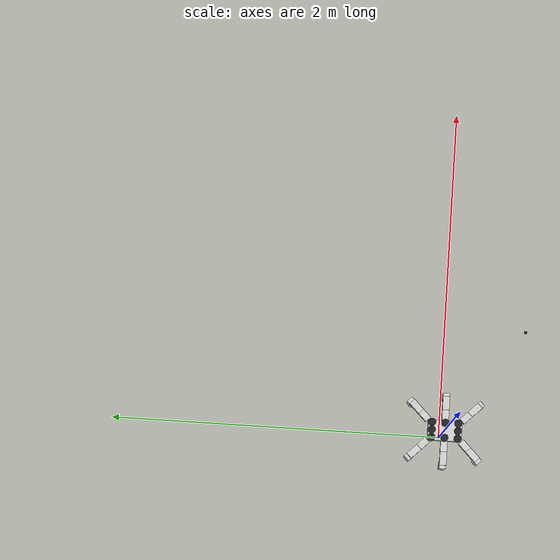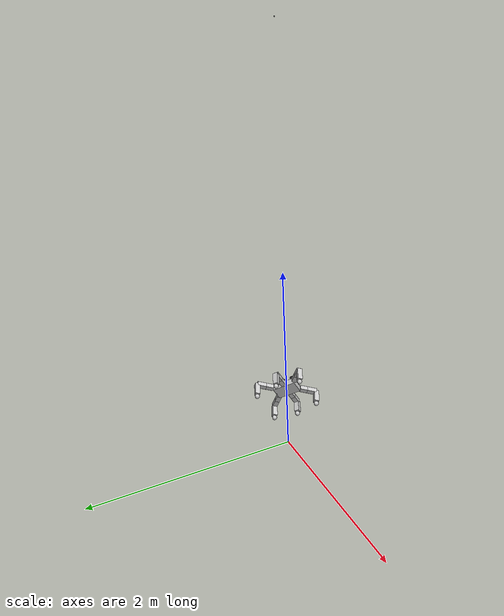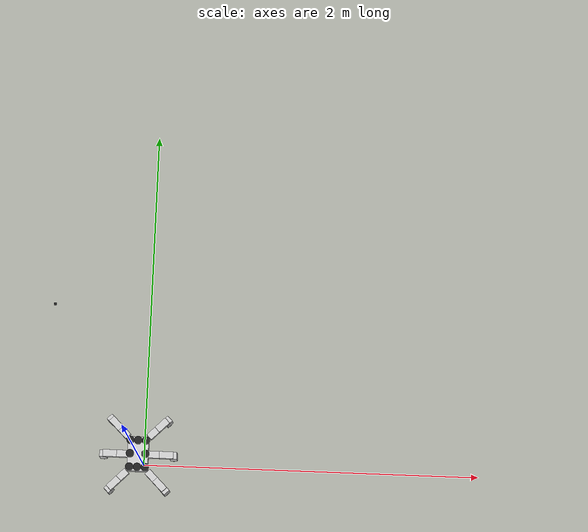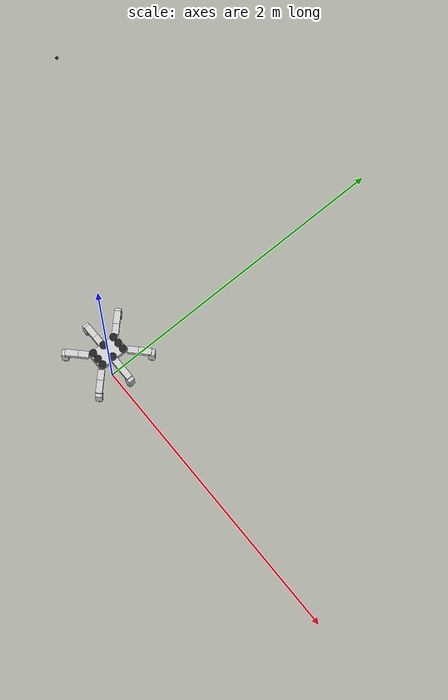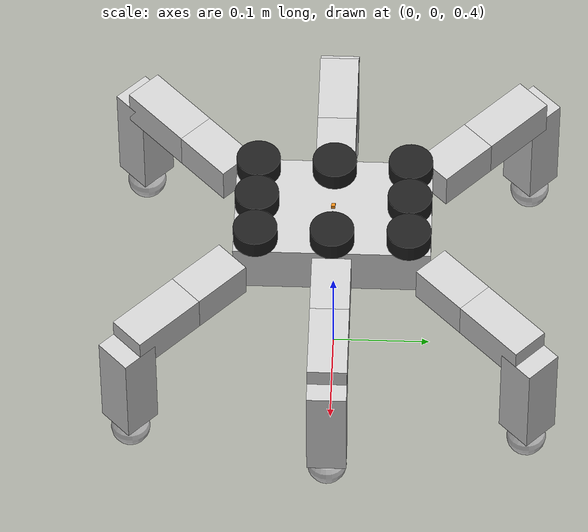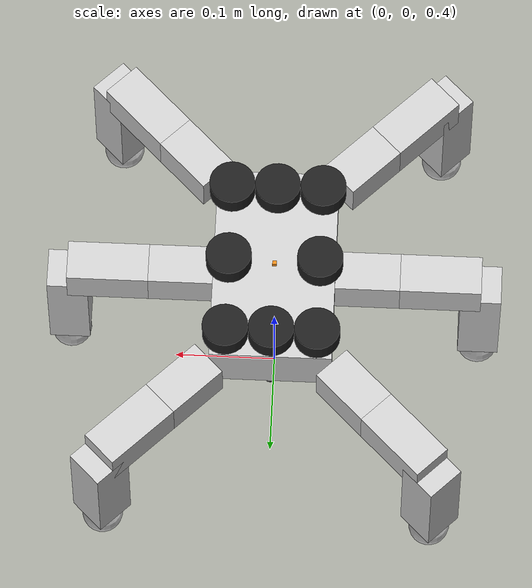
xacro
<?xml version="1.0"?>
<robot name="hexapod" xmlns:xacro="http://ros.org/wiki/xacro">
  <gazebo>
    <plugin name="gazebo_ros_control" filename="libgazebo_ros_control.so">
      <robotNamespace>/hexapod</robotNamespace>
    </plugin>
  </gazebo>

  <xacro:property name="body_y_length" value="0.200" />
  <xacro:property name="body_z_length" value="0.056" />
  <xacro:property name="body_x_length" value="0.120" />
  <xacro:property name="body_mass" value="0.700" />

  <xacro:property name="hip_z_length" value="0.04" />
  <xacro:property name="hip_y_length" value="0.04" />
  <xacro:property name="hip_x_length" value="0.063875" />
  <xacro:property name="hip_mass" value="0.081" />
  <xacro:property name="tc_joint_low" value="${-(35.0*pi)/180}" />
  <xacro:property name="tc_joint_high" value="${(35.0*pi)/180}" />

  <xacro:property name="femur_z_length" value="0.04" />
  <xacro:property name="femur_y_length" value="0.04" />
  <xacro:property name="femur_x_length" value="0.080" />
  <xacro:property name="femur_mass" value="0.136" />
  <xacro:property name="ctr_joint_low" value="${-(85.0*pi)/180}" />
  <xacro:property name="ctr_joint_high" value="${(85.0*pi)/180}" />
  <xacro:property name="ctr_init_pitch" value="0.0" />

  <xacro:property name="tibia_z_length" value="${0.114308}" />
  <xacro:property name="tibia_y_length" value="0.04" />
  <xacro:property name="tibia_x_length" value="0.04" />
  <xacro:property name="tibia_mass" value="${0.01338}" />
  <xacro:property name="fti_joint_low" value="${-(85.0*pi)/180}" />
  <xacro:property name="fti_joint_high" value="${(85.0*pi)/180}" />

  <xacro:property name="foot_mass" value="${0.00892}" />

  <!-- CHECK VALUES PLACED HERE!! -->
  <xacro:property name="imu_size" value="0.004" />
  <xacro:property name="imu_mass" value="0.024" />
  <xacro:property name="infrared_size" value="0.0225" />
  <xacro:property name="infrared_mass" value="0.09" />

  <xacro:property name="servo_vel" value="${(375*pi)/180}" />
  <xacro:property name="servo_effort_limit" value="1.89" />

  <!-- Inertia -->
  <xacro:macro name="cylinder_inertial" params="mass r l">
    <inertial>
      <mass value="${mass}" />
      <inertia ixx="${mass*(3*r*r+l*l)/12}" ixy="0.0" ixz="0.0"
        iyy="${mass*(3*r*r+l*l)/12}" iyz="0.0"
        izz="${mass*r*r/2.0}" />
    </inertial>
  </xacro:macro>

  <!-- Sonar sensors for obstacle detection -->
  <xacro:macro name="sonar" params="suffix xyz rpy">
    <link name="sonar_${suffix}_link">
      <visual>
        <geometry>
          <cylinder radius="${infrared_size}" length="${infrared_size-0.0025}"/>
        </geometry>
      </visual>
      <xacro:cylinder_inertial mass="${infrared_mass}" r="${infrared_size}" l="${infrared_size-0.0025}"/>
    </link>
    <joint name="torso_sonar_${suffix}_joint" type="fixed">
      <parent link="torso"/>
      <child link="sonar_${suffix}_link"/>
      <origin xyz="${xyz}" rpy="${rpy}"/>
    </joint>

    <gazebo reference="sonar_${suffix}_link">
      <material>Gazebo/Black</material>
      <sensor type="ray" name="sonar_${suffix}">
        <pose>0 0 0 0 0 0</pose>
        <visualize>true</visualize>
        <update_rate>50</update_rate>
        <ray>
          <scan>
            <horizontal>
              <samples>10</samples>
              <resolution>1</resolution>
              <min_angle>-0.1309</min_angle>
              <max_angle>0.1309</max_angle>
            </horizontal>
            <vertical>
              <samples>10</samples>
              <resolution>1</resolution>
              <min_angle>-0.1309</min_angle>
              <max_angle>0.1309</max_angle>
            </vertical>
          </scan>
          <range>
            <min>0.02</min>
            <max>1.0</max>
            <resolution>0.003</resolution>
          </range>
        </ray>
        <plugin filename="libgazebo_ros_range.so" name="gazebo_ros_range">
          <gaussianNoise>0.005</gaussianNoise>
          <alwaysOn>true</alwaysOn>
          <updateRate>50</updateRate>
          <topicName>sensor/sonar_${suffix}</topicName>
          <frameName>sonar_${suffix}_link</frameName>
          <visualize>true</visualize>
          <radiation>infrared</radiation>
          <fov>0.02</fov>
        </plugin>
      </sensor>
    </gazebo>

    <gazebo reference="torso_sonar_${suffix}_joint">
      <disableFixedJointLumping>true</disableFixedJointLumping>
    </gazebo>
  </xacro:macro>

  <!-- Hexapod -->
  <link name="dummy_link">
    <visual>
      <origin xyz="0 0 6.0" rpy="0 0 0" />
      <geometry>
        <box size="0.01 0.01 0.01"/>
      </geometry>
      <material name="black"/>
    </visual>
    <gazebo reference="dummy_link">
      <material>Gazebo/Black</material>
    </gazebo>
  </link>

  <link name="torso">
    <visual>
      <geometry>
        <box size="${body_x_length} ${body_y_length} ${body_z_length}"/>
      </geometry>
    </visual>
    <collision>
      <geometry>
        <box size="${body_x_length} ${body_y_length} ${body_z_length}"/>
      </geometry>
    </collision>
    <inertial>
        <mass value="${body_mass}" />
        <inertia ixx="0.002516" ixy="0.0" ixz="0.0"
                 iyy="0.001023" iyz="0.0"
                 izz="0.003173" />
    </inertial>
  </link>
  <joint name="dummy_base_joint" type="fixed">
    <parent link="dummy_link"/>
    <child link="torso"/>
    <origin xyz="0 0 ${tibia_z_length + tibia_x_length*2.0 + 0.4}" rpy="0 0 0"/>
  </joint>
  <gazebo reference="torso">
    <material>Gazebo/LightGrey</material>
  </gazebo>

  <!-- IMU sensor -->
  <link name="imu_link">
    <visual>
      <geometry>
        <box size="${imu_size} ${imu_size} ${imu_size}"/>
      </geometry>
    </visual>
    <collision>
      <geometry>
        <box size="${imu_size} ${imu_size} ${imu_size}"/>
      </geometry>
    </collision>
    <inertial>
        <mass value="${imu_mass}" />
        <inertia ixx="${(1/12) * imu_mass * (imu_size * imu_size + imu_size * imu_size)}" ixy="0.0" ixz="0.0"
                 iyy="${(1/12) * imu_mass * (imu_size * imu_size + imu_size * imu_size)}" iyz="0.0"
                 izz="${(1/12) * imu_mass * (imu_size * imu_size + imu_size * imu_size)}" />
    </inertial>
  </link>
  <joint name="torso_imu_joint" type="fixed">
    <parent link="torso"/>
    <child link="imu_link"/>
    <origin xyz="0 0 ${(body_z_length/2.0)+(imu_size/2.0)}" rpy="0 0 0"/>
  </joint>
  <gazebo reference="imu_link">
    <material>Gazebo/Orange</material>
    <gravity>true</gravity>
    <sensor name="imu_sensor" type="imu">
      <always_on>true</always_on>
      <update_rate>100</update_rate>
      <visualize>true</visualize>
      <topic>__default_topic__</topic>
      <plugin filename="libgazebo_ros_imu_sensor.so" name="imu_plugin">
        <robotNamespace>/hexapod</robotNamespace>
        <topicName>imu</topicName>
        <bodyName>imu_link</bodyName>
        <updateRateHZ>100.0</updateRateHZ>
        <gaussianNoise>0.0</gaussianNoise>
        <xyzOffset>0 0 0</xyzOffset>
        <rpyOffset>0 0 0</rpyOffset>
        <frameName>imu_link</frameName>
      </plugin>
      <pose>0 0 0 0 0 0</pose>
    </sensor>
  </gazebo>

  <gazebo reference="torso_imu_joint">
    <disableFixedJointLumping>true</disableFixedJointLumping>
  </gazebo>

  <!-- Sonar/IR sensor for height estimation -->
  <link name="infrared_link">
    <visual>
      <geometry>
        <cylinder radius="${infrared_size-0.0185}" length="${infrared_size-0.0185}"/>
      </geometry>
    </visual>
    <xacro:cylinder_inertial mass="${infrared_mass}" r="${infrared_size-0.0185}" l="${infrared_size-0.0185}"/>
  </link>
  <joint name="torso_infrared_joint" type="fixed">
    <parent link="torso"/>
    <child link="infrared_link"/>
    <origin xyz="0 ${(body_y_length/2.0)-(infrared_size-0.0185)} ${-(body_z_length/2.0)-(infrared_size-0.0185)}" rpy="${pi/2.0} ${pi/2.0} 0"/>
  </joint>
  <gazebo reference="infrared_link">
    <material>Gazebo/Black</material>
    <sensor type="ray" name="infrared_sensor">
      <pose>0 0 0 0 0 0</pose>
      <visualize>true</visualize>
      <update_rate>50</update_rate>
      <ray>
        <scan>
          <horizontal>
            <samples>10</samples>
            <resolution>1</resolution>
            <min_angle>-0.14835</min_angle>
            <max_angle>0.14835</max_angle>
          </horizontal>
          <vertical>
            <samples>10</samples>
            <resolution>1</resolution>
            <min_angle>-0.14835</min_angle>
            <max_angle>0.14835</max_angle>
          </vertical>
        </scan>
        <range>
          <min>0.001</min>
          <max>2</max>
          <resolution>0.002</resolution>
        </range>
      </ray>
      <plugin filename="libgazebo_ros_range.so" name="gazebo_ros_range">
        <gaussianNoise>0.005</gaussianNoise>
        <alwaysOn>true</alwaysOn>
        <updateRate>50</updateRate>
        <topicName>sensor/ir</topicName>
        <frameName>infrared_link</frameName>
        <visualize>true</visualize>
        <radiation>infrared</radiation>
        <fov>0.02</fov>
      </plugin>
    </sensor>
  </gazebo>

  <gazebo reference="torso_infrared_joint">
    <disableFixedJointLumping>true</disableFixedJointLumping>
  </gazebo>

  <!-- Macro function to placed sonars -->
  <!-- 3 sensores a frente 90 graus-->
  <!--xacro:sonar suffix="1" xyz="0 ${(body_y_length/2.0) - infrared_size} ${(body_z_length/2.0)+(infrared_size/2.0)}" rpy="0 0 ${pi/2.0}"/-->
  <!--xacro:sonar suffix="2" xyz="${(-0.0042 - infrared_size)} ${(body_y_length/2.0) - infrared_size} ${(body_z_length/2.0)+(infrared_size/2.0)}" rpy="0 0 ${(2*pi)/3.0}"/-->
  <!--xacro:sonar suffix="3" xyz="${(0.0042 + infrared_size)} ${(body_y_length/2.0) - infrared_size} ${(body_z_length/2.0)+(infrared_size/2.0)}" rpy="0 0 ${(pi)/3.0}"/-->

  <!-- 3 sensores a frente 150 graus-->
  <!--xacro:sonar suffix="1" xyz="0 ${(body_y_length/2.0) - infrared_size} ${(body_z_length/2.0)+(infrared_size/2.0)}" rpy="0 0 ${pi/2.0}"/-->
  <!--xacro:sonar suffix="2" xyz="${(-2.0 * infrared_size)} ${(body_y_length/2.0) - infrared_size} ${(body_z_length/2.0)+(infrared_size/2.0) + 0.1}" rpy="0 ${(2.0*pi)/45.0} ${(5.0*pi)/6.0}"/--> <!--nao utilizo esq-->
  <!--xacro:sonar suffix="2" xyz="${-body_x_length + infrared_size} ${(body_y_length/2.0) - infrared_size} ${(body_z_length/2.0)+(infrared_size/2.0)}" rpy="0 0 ${(5.0*pi)/6.0}"/--> <!--esquerda-->
  <!--xacro:sonar suffix="3" xyz="${(body_x_length - infrared_size)} ${(body_y_length/2.0) - infrared_size} ${(body_z_length/2.0)+(infrared_size/2.0)}" rpy="0 0 ${(pi)/6.0}"/--> <!--direita-->
  <!-- 1 atrás e 1 em cada lado -->
  <!--xacro:sonar suffix="4" xyz="0 ${-(body_y_length/2.0) + infrared_size} ${(body_z_length/2.0)+(infrared_size/2.0)}" rpy="0 0 ${-pi/2.0}"/--> <!-- atras -->
  <!--xacro:sonar suffix="5" xyz="${(body_x_length - hip_x_length - infrared_size/2.0)} ${(-0.04 - infrared_size)} ${(body_z_length/2.0)+(infrared_size/2.0)}" rpy="0 0 ${-pi/12.0}"/-->  <!-- direita -->
  <!--xacro:sonar suffix="6" xyz="${(-body_x_length + hip_x_length + infrared_size/2.0)} ${(-0.04 - infrared_size)} ${(body_z_length/2.0)+(infrared_size/2.0)}" rpy="0 0 ${(13.0*pi)/12.0}"/--> <!-- esquerda -->

  <!-- 1 em cada lado -->
  <!--xacro:sonar suffix="1" xyz="0 ${(body_y_length/2.0) - infrared_size} ${(body_z_length/2.0)+(infrared_size/2.0)}" rpy="0 0 ${pi/2.0}"/--> <!-- frente -->
  <!--xacro:sonar suffix="2" xyz="${(body_x_length/2.0 - hip_x_length + infrared_size)} ${-(body_y_length/2.0) + infrared_size} ${(body_z_length/2.0)+(infrared_size/2.0)}" rpy="0 0 ${-pi/2.0}"/--> <!-- atras -->
  <!--xacro:sonar suffix="3" xyz="${(body_x_length - hip_x_length)} ${(body_y_length/2.0)- hip_y_length - infrared_size} ${(body_z_length/2.0)+(infrared_size/2.0)}" rpy="0 0 0"/-->  <!-- direita -->
  <!--xacro:sonar suffix="4" xyz="${(-body_x_length + hip_x_length)} ${(0 - infrared_size)} ${(body_z_length/2.0)+(infrared_size/2.0)+0.09}" rpy="0 ${pi/10.0} ${pi}"/--> <!-- esquerda -->

  <!-- 3 a frente; 3 atras; 1 em cada lado -->
  <xacro:sonar suffix="1" xyz="0 ${(body_y_length/2.0) - infrared_size} ${(body_z_length/2.0)+(infrared_size/2.0)}" rpy="0 0 ${pi/2.0}"/> <!-- frente -->
  <xacro:sonar suffix="2" xyz="${-body_x_length + hip_x_length + infrared_size/2.0} ${(body_y_length/2.0) - infrared_size} ${(body_z_length/2.0)+(infrared_size/2.0)}" rpy="0 0 ${(3.0*pi)/4.0}"/> <!--esq-->
  <xacro:sonar suffix="3" xyz="${(body_x_length - hip_x_length - infrared_size/2.0)} ${(body_y_length/2.0) - infrared_size} ${(body_z_length/2.0)+(infrared_size/2.0)}" rpy="0 0 ${(pi)/4.0}"/> <!--dir-->
  <xacro:sonar suffix="4" xyz="0 ${-(body_y_length/2.0) + infrared_size} ${(body_z_length/2.0)+(infrared_size/2.0)}" rpy="0 0 ${-pi/2.0}"/> <!-- atras -->
  <xacro:sonar suffix="5" xyz="${(-body_x_length + hip_x_length + infrared_size/2.0)} ${-(body_y_length/2.0) + infrared_size} ${(body_z_length/2.0)+(infrared_size/2.0)}" rpy="0 0 ${-3.0*pi/4.0}"/> <!--esq-->
  <xacro:sonar suffix="6" xyz="${(body_x_length - hip_x_length - infrared_size/2.0)} ${-(body_y_length/2.0) + infrared_size} ${(body_z_length/2.0)+(infrared_size/2.0)}" rpy="0 0 ${-pi/4.0}"/> <!--dir-->
  <xacro:sonar suffix="7" xyz="${(body_x_length - hip_x_length - infrared_size/2.0)} 0 ${(body_z_length/2.0)+(infrared_size/2.0)}" rpy="0 0 0"/>  <!--lado dir-->
  <xacro:sonar suffix="8" xyz="${(-body_x_length + hip_x_length + infrared_size/2.0)} 0 ${(body_z_length/2.0)+(infrared_size/2.0)}" rpy="0 0 ${pi}"/> <!--lado esq-->

  <xacro:macro name="coxa" params="suffix reflect_front reflect_right rpy">
    <link name="coxa_${suffix}">
      <visual>
        <origin xyz="${hip_x_length/2} 0 0" rpy="0 0 0" />
        <geometry>
          <box size="${hip_x_length} ${hip_y_length} ${hip_z_length}"/>
        </geometry>
      </visual>
      <collision>
        <origin xyz="${hip_x_length/2} 0 0" rpy="0 0 0" />
        <geometry>
          <box size="${hip_x_length} ${hip_y_length} ${hip_z_length}"/>
        </geometry>
      </collision>
      <inertial>
          <origin xyz="${hip_x_length/2} 0 0" rpy="0 0 0" />
          <mass value="${hip_mass}" />
          <inertia ixx="0.0000216" ixy="0.0" ixz="0.0"
                   iyy="0.0000383401" iyz="0.0"
                   izz="0.0000383401" />
      </inertial>
    </link>
    <joint name="tc_${suffix}" type="revolute">
      <axis xyz="0 0 1"/>
      <parent link="torso"/>
      <child link="coxa_${suffix}"/>
      <origin xyz="${reflect_right*body_x_length/2.0} ${reflect_front*body_y_length/2.0} 0" rpy="${rpy}"/>
      <limit lower="${tc_joint_low}" upper="${tc_joint_high}" effort="${servo_effort_limit}" velocity="${servo_vel}"/>
      <dynamics friction="0.0" />
    </joint>
    <gazebo reference="coxa_${suffix}">
      <material>Gazebo/LightGrey</material>
    </gazebo>
    <gazebo reference="tc_${suffix}">
      <provideFeedback>true</provideFeedback>
    </gazebo>
    <gazebo>
      <plugin name="torque_sensor_tc_${suffix}" filename="libgazebo_ros_ft_sensor.so">
        <updateRate>50.0</updateRate>
        <topicName>torque_tc_${suffix}</topicName>
        <jointName>tc_${suffix}</jointName>
      </plugin>
    </gazebo>
    <transmission name="j_tc_${suffix}">
      <type>transmission_interface/SimpleTransmission</type>
      <joint name="tc_${suffix}">
        <hardwareInterface>hardware_interface/EffortJointInterface</hardwareInterface>
      </joint>
      <actuator name="motor_tc_${suffix}">
        <hardwareInterface>hardware_interface/EffortJointInterface</hardwareInterface>
        <mechanicalReduction>1</mechanicalReduction>
      </actuator>
    </transmission>
  </xacro:macro>

  <xacro:macro name="femur" params="suffix reflect_right">
    <link name="femur_${suffix}">
      <visual>
        <origin xyz="${femur_x_length/2.0} 0 0" rpy="0 0 0" />
        <geometry>
          <box size="${femur_x_length} ${femur_y_length} ${femur_z_length}"/>
        </geometry>
      </visual>
      <collision>
        <origin xyz="${femur_x_length/2.0} 0 0" rpy="0 0 0" />
        <geometry>
          <box size="${femur_x_length} ${femur_y_length} ${femur_z_length}"/>
        </geometry>
      </collision>
      <inertial>
          <origin xyz="${femur_x_length/2} 0 0" rpy="0 0 0" />
          <mass value="${femur_mass}" />
          <inertia ixx="0.0000362667" ixy="0.0" ixz="0.0"
                   iyy="0.0000906667" iyz="0.0"
                   izz="0.0000906667" />
      </inertial>
    </link>
    <joint name="ctr_${suffix}" type="revolute">
      <axis xyz="0 -1 0"/>
      <parent link="coxa_${suffix}"/>
      <child link="femur_${suffix}"/>
      <origin xyz="${hip_x_length} 0 0" rpy="0 0 0"/>
      <limit lower="${ctr_joint_low}" upper="${ctr_joint_high}" effort="${servo_effort_limit}" velocity="${servo_vel}"/>
      <dynamics friction="0.0" />
    </joint>
    <gazebo reference="femur_${suffix}">
      <material>Gazebo/LightGrey</material>
    </gazebo>
    <gazebo reference="ctr_${suffix}">
      <provideFeedback>true</provideFeedback>
    </gazebo>
    <gazebo>
      <plugin name="torque_sensor_ctr_${suffix}" filename="libgazebo_ros_ft_sensor.so">
        <updateRate>50.0</updateRate>
        <topicName>torque_ctr_${suffix}</topicName>
        <jointName>ctr_${suffix}</jointName>
      </plugin>
    </gazebo>
    <transmission name="j_ctr_${suffix}">
      <type>transmission_interface/SimpleTransmission</type>
      <joint name="ctr_${suffix}">
        <hardwareInterface>hardware_interface/EffortJointInterface</hardwareInterface>
      </joint>
      <actuator name="motor_ctr_${suffix}">
        <hardwareInterface>hardware_interface/EffortJointInterface</hardwareInterface>
        <mechanicalReduction>1</mechanicalReduction>
      </actuator>
    </transmission>
  </xacro:macro>

  <xacro:macro name="tibia" params="suffix reflect_right">
    <link name="tibia_${suffix}">
      <visual>
          <origin xyz="0 0 ${-tibia_z_length/2.0}" rpy="0 0 0" />
          <geometry>
            <box size="${tibia_x_length} ${tibia_y_length} ${tibia_z_length}"/>
          </geometry>
      </visual>
      <collision>
        <origin xyz="0 0 ${-tibia_z_length/2.0}" rpy="0 0 0" />
        <geometry>
          <box size="${tibia_x_length} ${tibia_y_length} ${tibia_z_length}"/>
        </geometry>
      </collision>
      <inertial>
          <origin xyz="0 0 ${-tibia_z_length/2.0}" rpy="0 0 0" />
          <mass value="${tibia_mass}" />
          <inertia ixx="0.0000163529" ixy="0.0" ixz="0.0"
                   iyy="0.0000163529" iyz="0.0"
                   izz="0.000003568" />
      </inertial>
    </link>
    <joint name="fti_${suffix}" type="revolute">
      <axis xyz="0 -1 0" />
      <parent link="femur_${suffix}"/>
      <child link="tibia_${suffix}"/>
      <origin xyz="${femur_x_length} 0 0" rpy="0 0 0"/>
      <limit lower="${fti_joint_low}" upper="${fti_joint_high}" effort="${servo_effort_limit}" velocity="${servo_vel}"/>
      <dynamics friction="0.0" />
    </joint>
    <gazebo reference="tibia_${suffix}">
      <material>Gazebo/LightGrey</material>
    </gazebo>
    <gazebo reference="fti_${suffix}">
      <provideFeedback>true</provideFeedback>
    </gazebo>
    <gazebo>
      <plugin name="torque_sensor_fti_${suffix}" filename="libgazebo_ros_ft_sensor.so">
        <updateRate>50.0</updateRate>
        <topicName>torque_fti_${suffix}</topicName>
        <jointName>fti_${suffix}</jointName>
      </plugin>
    </gazebo>
    <transmission name="j_fti_${suffix}">
      <type>transmission_interface/SimpleTransmission</type>
      <joint name="fti_${suffix}">
        <hardwareInterface>hardware_interface/EffortJointInterface</hardwareInterface>
      </joint>
      <actuator name="motor_fti_${suffix}">
        <hardwareInterface>hardware_interface/EffortJointInterface</hardwareInterface>
        <mechanicalReduction>1</mechanicalReduction>
      </actuator>
    </transmission>
  </xacro:macro>

  <xacro:macro name="foot" params="suffix reflect_right">
    <link name="foot_${suffix}">
      <visual>
        <origin xyz="0 0 0" rpy="0 0 0" />
        <geometry>
          <sphere radius="${0.04/2.0}"/>
        </geometry>
      </visual>
      <collision>
        <origin xyz="0 0 0" rpy="0 0 0" />
        <geometry>
          <sphere radius="${0.04/2.0}"/>
        </geometry>
      </collision>
      <inertial>
          <origin xyz="0 0 0" rpy="0 0 0" />
          <mass value="${foot_mass}" />
          <inertia ixx="0.0000057088" ixy="0.0" ixz="0.0"
                   iyy="0.0000057088" iyz="0.0"
                   izz="0.0000057088" />
      </inertial>
    </link>
    <joint name="foot_${suffix}_joint" type="fixed">
      <parent link="tibia_${suffix}"/>
      <child link="foot_${suffix}"/>
      <origin xyz="0 0 ${-tibia_z_length-tibia_x_length/2.0}" rpy="0 0 0"/>
    </joint>
    <gazebo reference="foot_${suffix}_joint">
      <disableFixedJointLumping>true</disableFixedJointLumping>
    </gazebo>
    <gazebo reference="foot_${suffix}">
      <kp>1e06</kp>
      <kd>1.0</kd>
      <maxVel>0.0</maxVel>
      <minDepth>0.003</minDepth>
      <material>Gazebo/LightGrey</material>
      <collision name="foot_${suffix}_collision">
        <geometry>
          <sphere>
            <radius>${tibia_x_length/2.0}</radius>
          </sphere>
        </geometry>
        <surface>
          <friction>
            <ode>
              <solver>
                <friction_model>cone_model</friction_model>
                <mu>1.0</mu>
              </solver>
            </ode>
          </friction>
        </surface>
      </collision>
      <!-- Bumper sensor for contact detection -->
      <sensor name="contact_sensor_${suffix}" type="contact">
        <always_on>true</always_on>
        <contact>
          <collision>foot_${suffix}_collision</collision>
        </contact>
        <plugin name="foot_${suffix}_plugin" filename="libgazebo_ros_bumper.so">
          <updateRate>50</updateRate>
          <always_on>true</always_on>
          <bumperTopicName>foot_${suffix}_bumper</bumperTopicName>
          <frameName>world</frameName>
        </plugin>
      </sensor>
    </gazebo>
  </xacro:macro>

  <!-- gazebo ros joint state pub plugin -->
  <gazebo>
    <plugin name="joint_state_publisher" filename="libgazebo_ros_joint_state_publisher.so">
      <robotNamespace>/hexapod</robotNamespace>
      <jointName>tc_1, tc_2, tc_3, tc_4, tc_5, tc_6, ctr_1, ctr_2, ctr_3, ctr_4, ctr_5, ctr_6, fti_1, fti_2, fti_3, fti_4, fti_5, fti_6</jointName>
      <updateRate>50</updateRate>
      <alwaysOn>true</alwaysOn>
    </plugin>
  </gazebo>

  <xacro:macro name="leg" params="suffix reflect_front reflect_right rpy">
    <xacro:coxa suffix="${suffix}" reflect_front="${reflect_front}" reflect_right="${reflect_right}" rpy="${rpy}"/>
    <xacro:femur suffix="${suffix}" reflect_right="${reflect_right}"/>
    <xacro:tibia suffix="${suffix}" reflect_right="${reflect_right}"/>
    <xacro:foot suffix="${suffix}" reflect_right="${reflect_right}"/>
  </xacro:macro>

  <xacro:leg suffix="1" reflect_front="0" reflect_right="1" rpy="0 0 ${0.0*pi/2.0 - 0.0*1.0*pi/4.0}"/>
  <xacro:leg suffix="2" reflect_front="1" reflect_right="1" rpy="0 0 ${1.0*pi/2.0 - 1.0*1.0*pi/4.0}"/>
  <xacro:leg suffix="3" reflect_front="1" reflect_right="-1" rpy="0 0 ${1.0*pi/2.0 - 1.0*-1.0*pi/4.0}"/>
  <xacro:leg suffix="4" reflect_front="0" reflect_right="-1" rpy="0 0 ${pi}"/>
  <xacro:leg suffix="5" reflect_front="-1" reflect_right="-1" rpy="0 0 ${-1.0*pi/2.0 - -1.0*-1.0*pi/4.0}"/>
  <xacro:leg suffix="6" reflect_front="-1" reflect_right="1" rpy="0 0 ${-1.0*pi/2.0 - -1.0*1.0*pi/4.0}"/>
</robot>
